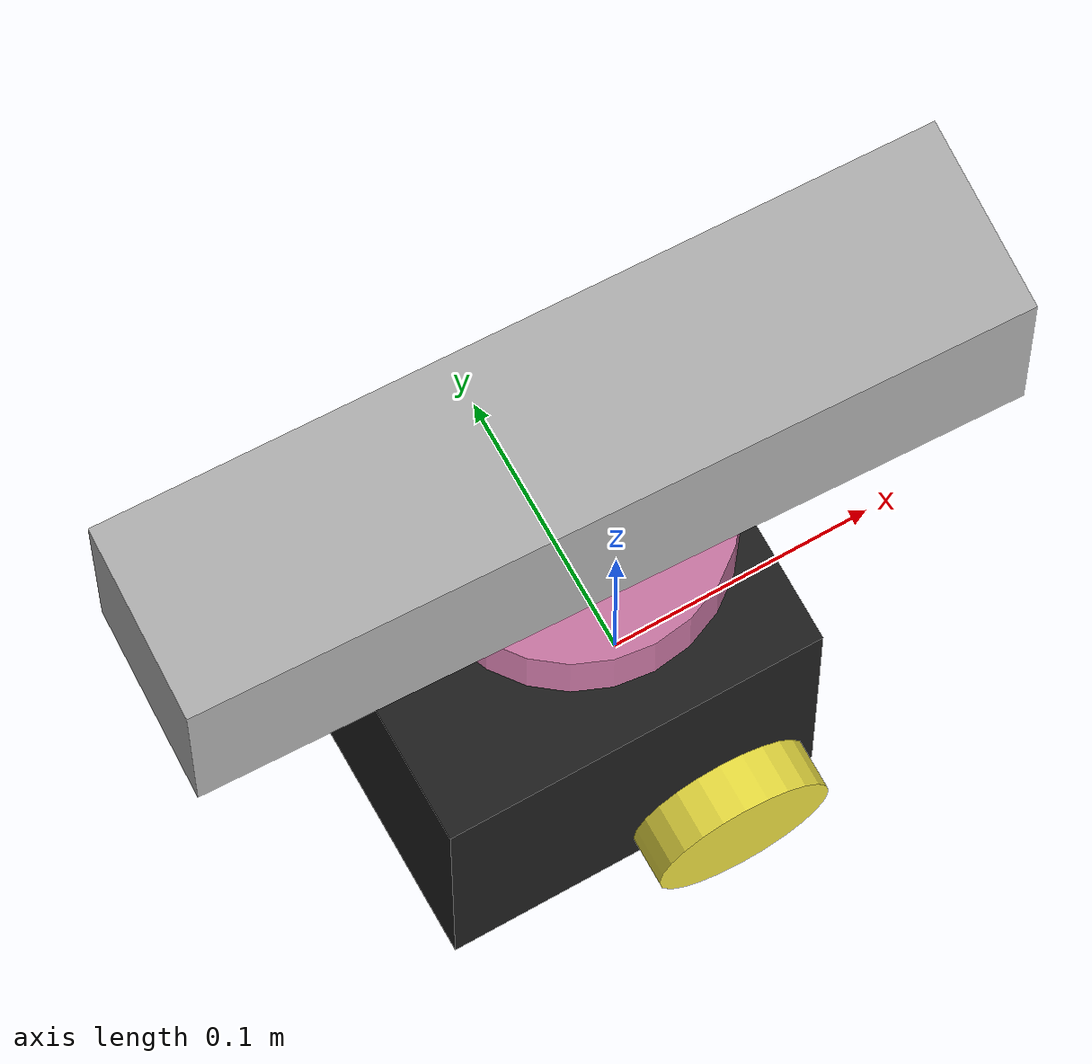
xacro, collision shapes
<?xml version="1.0" ?>
<robot name="turtlebot3_burger" xmlns:xi="http://www.w3.org/2001/XInclude"
    xmlns:gazebo="http://playerstage.sourceforge.net/gazebo/xmlschema/#gz"
    xmlns:model="http://playerstage.sourceforge.net/gazebo/xmlschema/#model"
    xmlns:sensor="http://playerstage.sourceforge.net/gazebo/xmlschema/#sensor"
    xmlns:body="http://playerstage.sourceforge.net/gazebo/xmlschema/#body"
    xmlns:geom="http://playerstage.sourceforge.net/gazebo/xmlschema/#geom"
    xmlns:joint="http://playerstage.sourceforge.net/gazebo/xmlschema/#joint"
    xmlns:controller="http://playerstage.sourceforge.net/gazebo/xmlschema/#controller"
    xmlns:interface="http://playerstage.sourceforge.net/gazebo/xmlschema/#interface"
    xmlns:rendering="http://playerstage.sourceforge.net/gazebo/xmlschema/#rendering"
    xmlns:renderable="http://playerstage.sourceforge.net/gazebo/xmlschema/#renderable"
    xmlns:physics="http://playerstage.sourceforge.net/gazebo/xmlschema/#physics"
    xmlns:xacro="http://ros.org/wiki/xacro">
  <xacro:include filename="$(find turtlebot3_description)/urdf/common_properties.xacro"/>
  <xacro:include filename="$(find turtlebot3_description)/urdf/turtlebot3_burger_for_autorace_2020.gazebo.xacro"/>
  <xacro:include filename="$(find mycar_description)/sensors/kinect_gazebo.xacro"/>

  <link name="base_footprint"/>

  <joint name="base_joint" type="fixed">
    <parent link="base_footprint"/>
    <child link="base_link"/>
    <origin xyz="0.0 0.0 0.010" rpy="0 0 0"/>
  </joint>

  <link name="base_link">
    <visual>
      <origin xyz="-0.032 0 0.0" rpy="0 0 0"/>
      <geometry>
        <mesh filename="package://turtlebot3_description/meshes/bases/burger_base.stl" scale="0.001 0.001 0.001"/>
      </geometry>
      <material name="light_black"/>
    </visual>

    <collision>
      <origin xyz="-0.032 0 0.070" rpy="0 0 0"/>
      <geometry>
        <box size="0.140 0.140 0.143"/>
      </geometry>
    </collision>

    <inertial>
      <origin xyz="-0.016 0 0" rpy="0 0 0"/>
      <mass value="8.2573504"/>
      <inertia ixx="2.2124416e-02" ixy="-1.2294101e-04" ixz="3.4938785e-04"
               iyy="2.1193702e-02" iyz="-5.0120904e-05"
               izz="2.0064271e-02" />
    </inertial>
  </link>

  <joint name="wheel_left_joint" type="continuous">
    <parent link="base_link"/>
    <child link="wheel_left_link"/>
    <origin xyz="0.0 0.08 0.023" rpy="-1.5707 0 0"/>
    <axis xyz="0 0 1"/>
  </joint>

  <link name="wheel_left_link">
    <visual>
      <origin xyz="0 0 0" rpy="1.5707 0 0"/>
      <geometry>
        <mesh filename="package://turtlebot3_description/meshes/wheels/left_tire.stl" scale="0.001 0.001 0.001"/>
      </geometry>
      <material name="dark"/>
    </visual>

    <collision>
      <origin xyz="0 0 0" rpy="0 0 0"/>
      <geometry>
        <cylinder length="0.018" radius="0.033"/>
      </geometry>
    </collision>

    <inertial>
      <origin xyz="0 0 0" />
      <mass value="2.8498940" />
      <inertia ixx="1.1175580e-03" ixy="-4.2369783e-08" ixz="-5.9381719e-07"
               iyy="1.1192413e-03" iyz="-1.4400107e-08"
               izz="2.0712558e-03" />
      </inertial>
  </link>

  <joint name="wheel_right_joint" type="continuous">
    <parent link="base_link"/>
    <child link="wheel_right_link"/>
    <origin xyz="0.0 -0.080 0.023" rpy="-1.5707 0 0"/>
    <axis xyz="0 0 1"/>
  </joint>

  <link name="wheel_right_link">
    <visual>
      <origin xyz="0 0 0" rpy="1.5707 0 0"/>
      <geometry>
        <mesh filename="package://turtlebot3_description/meshes/wheels/right_tire.stl" scale="0.001 0.001 0.001"/>
      </geometry>
      <material name="dark"/>
    </visual>

    <collision>
      <origin xyz="0 0 0" rpy="0 0 0"/>
      <geometry>
        <cylinder length="0.018" radius="0.033"/>
      </geometry>
    </collision>

    <inertial>
      <origin xyz="0 0 0" />
      <mass value="2.8498940" />
      <inertia ixx="1.1175580e-03" ixy="-4.2369783e-08" ixz="-5.9381719e-07"
               iyy="1.1192413e-03" iyz="-1.4400107e-08"
               izz="2.0712558e-03" />
      </inertial>
  </link>

  <joint name="caster_back_joint" type="fixed">
    <parent link="base_link"/>
    <child link="caster_back_link"/>
    <origin xyz="-0.081 0 -0.004" rpy="-1.5707 0 0"/>
  </joint>

  <link name="caster_back_link">
    <collision>
      <origin xyz="0 0.000 0" rpy="0 0 0"/>
      <geometry>
        <box size="0.030 0.009 0.020"/>
      </geometry>
    </collision>

    <inertial>
      <origin xyz="0 0 0" />
      <mass value="0.000001" />
      <inertia ixx="0.000001" ixy="0.0" ixz="0.0"
               iyy="0.000001" iyz="0.0"
               izz="0.000001" />
    </inertial>
  </link>

  <joint name="imu_joint" type="fixed">
    <parent link="base_link"/>
    <child link="imu_link"/>
    <origin xyz="-0.032 0 0.068" rpy="0 0 0"/>
  </joint>

  <link name="imu_link"/>

  <joint name="scan_joint" type="fixed">
    <parent link="base_link"/>
    <child link="base_scan"/>
    <origin xyz="-0.032 0 0.172" rpy="0 0 0"/>
  </joint>

  <link name="base_scan">
    <visual>
      <origin xyz="0 0 0.0" rpy="0 0 0"/>
      <geometry>
        <mesh filename="package://turtlebot3_description/meshes/sensors/lds.stl" scale="0.001 0.001 0.001"/>
      </geometry>
      <material name="dark"/>
    </visual>

    <collision>
      <origin xyz="0.015 0 -0.0065" rpy="0 0 0"/>
      <geometry>
        <cylinder length="0.0315" radius="0.055"/>
      </geometry>
    </collision>

    <inertial>
      <mass value="0.114" />
      <origin xyz="0 0 0" />
      <inertia ixx="0.001" ixy="0.0" ixz="0.0"
               iyy="0.001" iyz="0.0"
               izz="0.001" />
    </inertial>
  </link>

  <xacro:property name="kinect_offset_x" value="-0.02"/>
  <xacro:property name="kinect_offset_y" value="0"/>
  <xacro:property name="kinect_offset_z" value="0.23"/>

  <joint name="kinect_joint" type="fixed">
        <origin xyz="${kinect_offset_x} ${kinect_offset_y} ${kinect_offset_z}" rpy="0 0 1.53" />
        <parent link="base_link" />
        <child link="kinect_link" />
    </joint>

    <xacro:kinect_camera prefix="kinect"/>

</robot>

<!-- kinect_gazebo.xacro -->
<robot xmlns:xacro="http://www.ros.org/wiki/xacro" name="kinect_camera">
    <xacro:property name="M_PI" value="3.1415926"/>
    <xacro:macro name="kinect_camera" params="prefix:=camera">
        <!-- Create kinect reference frame -->
        <!-- Add mesh for kinect -->
        <link name="${prefix}_link">
            <origin xyz="0 0 0" rpy="0 0 0"/>
            <visual>
                <origin xyz="0 0 0" rpy="0 0 ${M_PI/2}"/>
                <geometry>
                    <mesh filename="package://mycar_description/meshes/kinect.dae" />
                </geometry>
            </visual>
            <collision>
                <geometry>
                    <box size="0.07 0.3 0.09"/>
                </geometry>
            </collision>
        </link>

        <joint name="${prefix}_optical_joint" type="fixed">
            <origin xyz="0 0 0" rpy="-1.5708 0 -1.5708"/>
            <parent link="${prefix}_link"/>
            <child link="${prefix}_frame_optical"/>
        </joint>

        <link name="${prefix}_frame_optical"/>

        <gazebo reference="${prefix}_link">
            <sensor type="depth" name="${prefix}">
                <always_on>true</always_on>
                <update_rate>20.0</update_rate>
                <camera>
                    <horizontal_fov>${60.0*M_PI/180.0}</horizontal_fov>
                    <image>
                        <format>R8G8B8</format>
                        <width>640</width>
                        <height>480</height>
                    </image>
                    <clip>
                        <near>0.05</near>
                        <far>8.0</far>
                    </clip>
                </camera>
                <plugin name="kinect_${prefix}_controller" filename="libgazebo_ros_openni_kinect.so">
                    <cameraName>${prefix}</cameraName>
                    <alwaysOn>true</alwaysOn>
                    <updateRate>10</updateRate>
                    <imageTopicName>rgb/image_raw</imageTopicName>
                    <depthImageTopicName>depth/image_raw</depthImageTopicName>
                    <pointCloudTopicName>depth/points</pointCloudTopicName>
                    <cameraInfoTopicName>rgb/camera_info</cameraInfoTopicName>
                    <depthImageCameraInfoTopicName>depth/camera_info</depthImageCameraInfoTopicName>
                    <frameName>${prefix}_frame_optical</frameName>
                    <baseline>0.1</baseline>
                    <distortion_k1>0.0</distortion_k1>
                    <distortion_k2>0.0</distortion_k2>
                    <distortion_k3>0.0</distortion_k3>
                    <distortion_t1>0.0</distortion_t1>
                    <distortion_t2>0.0</distortion_t2>
                    <pointCloudCutoff>0.4</pointCloudCutoff>
                </plugin>
            </sensor>
        </gazebo>

    </xacro:macro>
</robot>
